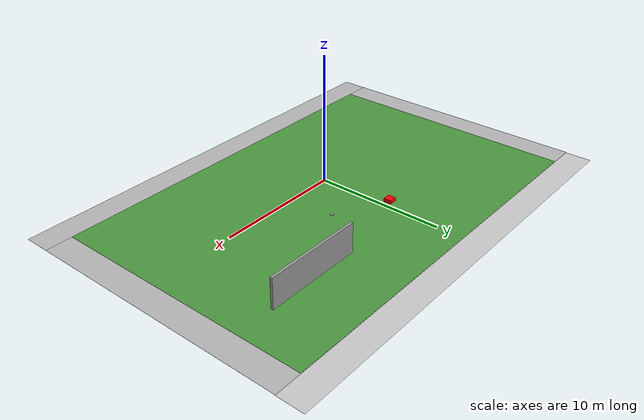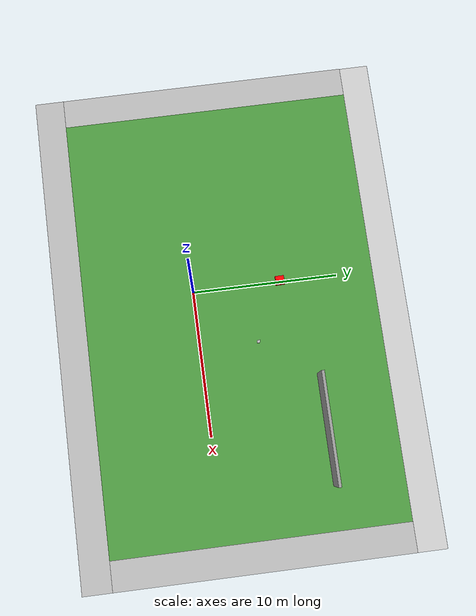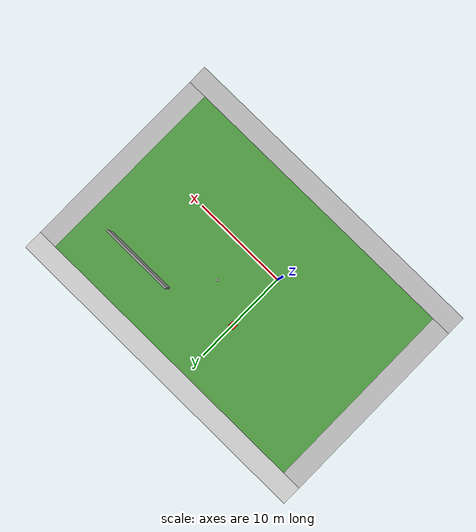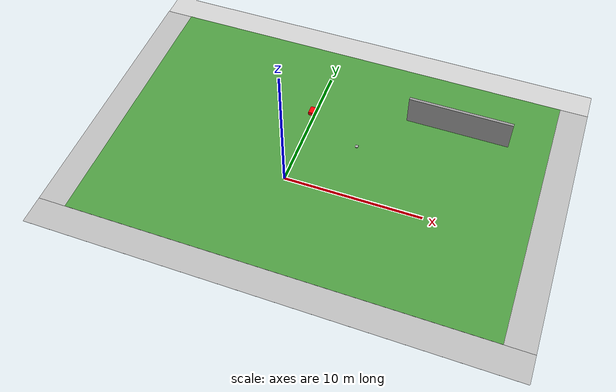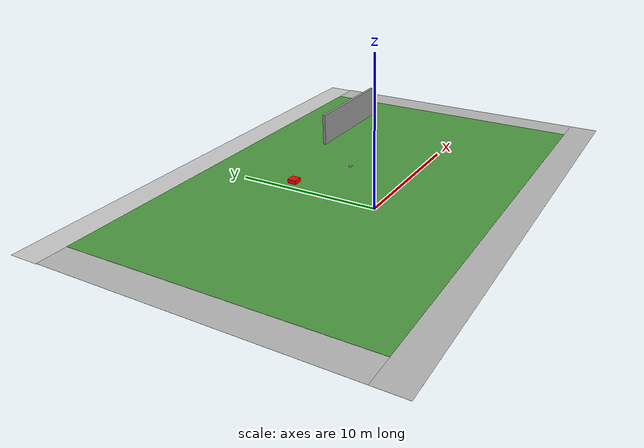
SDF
<sdf version="1.4">
 <world name="default">
  <light name="sun" type="directional">
   <pose>0 0 10 0 -0 0</pose>
   <diffuse>0.8 0.8 0.8 1</diffuse>
   <specular>0.2 0.2 0.2 1</specular>
   <attenuation>
    <range>1000</range>
    <constant>0.9</constant>
    <linear>0.01</linear>
    <quadratic>0.001</quadratic>
   </attenuation>
   <direction>-0.5 0.1 -0.9</direction>
  </light>
  <physics type="ode">
   <max_step_size>0.001</max_step_size>
   <real_time_factor>1</real_time_factor>
   <real_time_update_rate>1000</real_time_update_rate>
   <gravity>0 0 -9.8</gravity>
  </physics>
  <scene><ambient>0.4 0.4 0.4 1</ambient><background>0.7 0.7 0.7 1</background><shadows>1</shadows></scene>
  <model name="robocup_3Dsim_field_0">
   <pose>2.05927 2.44023 0.5 0 -0 0</pose>
   <static>1</static>
   <link name="RoboCup 3D Simulation Field::field">
    <pose>0 0 0.01 0 -0 0</pose>
    <collision name="collision">
     <geometry><plane><normal>0 0 1</normal><size>30 20</size></plane></geometry>
     <surface><friction><ode><mu>100</mu><mu2>50</mu2></ode></friction></surface>
    </collision>
    <visual name="base1">
     <pose>0 11 0.001 0 -0 0</pose>
     <cast_shadows>0</cast_shadows>
     <geometry><plane><normal>0 0 1</normal><size>34 2</size></plane></geometry>
     <material>
      <script>
       <uri>model://robocup_3Dsim_field/materials/scripts/</uri>
       <uri>model://robocup_3Dsim_field/materials/textures/</uri>
       <name>RoboCup/FieldBorder</name>
      </script>
     </material>
    </visual>
    <visual name="base2">
     <pose>0 -11 0.001 0 -0 0</pose>
     <cast_shadows>0</cast_shadows>
     <geometry><plane><normal>0 0 1</normal><size>34 2</size></plane></geometry>
     <material>
      <script>
       <uri>model://robocup_3Dsim_field/materials/scripts/</uri>
       <uri>model://robocup_3Dsim_field/materials/textures/</uri>
       <name>RoboCup/FieldBorder</name>
      </script>
     </material>
    </visual>
    <visual name="base3">
     <pose>16 0 0.001 0 -0 0</pose>
     <cast_shadows>0</cast_shadows>
     <geometry><plane><normal>0 0 1</normal><size>2 20</size></plane></geometry>
     <material>
      <script>
       <uri>model://robocup_3Dsim_field/materials/scripts/</uri>
       <uri>model://robocup_3Dsim_field/materials/textures/</uri>
       <name>RoboCup/FieldBorder</name>
      </script>
     </material>
    </visual>
    <visual name="base4">
     <pose>-16 0 0.001 0 -0 0</pose>
     <cast_shadows>0</cast_shadows>
     <geometry><plane><normal>0 0 1</normal><size>2 20</size></plane></geometry>
     <material>
      <script>
       <uri>model://robocup_3Dsim_field/materials/scripts/</uri>
       <uri>model://robocup_3Dsim_field/materials/textures/</uri>
       <name>RoboCup/FieldBorder</name>
      </script>
     </material>
    </visual>
    <visual name="carpet">
     <cast_shadows>0</cast_shadows>
     <geometry><plane><normal>0 0 1</normal><size>30 20</size></plane></geometry>
     <material>
      <script>
       <uri>model://robocup_3Dsim_field/materials/scripts/</uri>
       <uri>model://robocup_3Dsim_field/materials/textures/</uri>
       <name>RoboCup/Grass</name>
      </script>
     </material>
    </visual>
   </link>
  </model>
  <model name="grey_wall">
   <static>1</static>
   <link name="link">
    <pose>0 0 1.4 0 -0 0</pose>
    <collision name="collision"><geometry><box><size>7.5 0.2 2.8</size></box></geometry></collision>
    <visual name="visual">
     <cast_shadows>0</cast_shadows>
     <geometry><box><size>7.5 0.2 2.8</size></box></geometry>
     <material>
      <script>
       <uri>model://grey_wall/materials/scripts</uri>
       <uri>model://grey_wall/materials/textures</uri>
       <name>vrc/grey_wall</name>
      </script>
     </material>
    </visual>
    <velocity_decay><linear>0</linear><angular>0</angular></velocity_decay>
   </link>
   <pose>10.402 7.71769 0 0 -0 0</pose>
  </model>
  <model name="payload1">
   <pose>4 4 0.5 0 0 0</pose>
   <static>true</static>
   <link name="link">
    <inertial>
     <mass>1.0</mass>
     <inertia><ixx>0.083</ixx><ixy>0.0</ixy><ixz>0.0</ixz><iyy>0.083</iyy><iyz>0.0</iyz><izz>0.083</izz></inertia>
    </inertial>
    <collision name="collision"><geometry><box><size>0.2 0.2 0.2</size></box></geometry></collision>
    <visual name="visual"><geometry><box><size>0.2 0.2 0.2</size></box></geometry></visual>
   </link>
  </model>
  <model name="dropoff1">
   <pose>0 6 0.5 0 0 0</pose>
   <static>true</static>
   <link name="link">
    <inertial>
     <mass>1.0</mass>
     <inertia><ixx>0.083</ixx><ixy>0.0</ixy><ixz>0.0</ixz><iyy>0.083</iyy><iyz>0.0</iyz><izz>0.083</izz></inertia>
    </inertial>
    <collision name="collision"><geometry><box><size>0.6 0.6 0.6</size></box></geometry></collision>
    <visual name="visual">
     <geometry><box><size>0.6 0.6 0.6</size></box></geometry>
     <material>
      <ambient>1 0 0 1</ambient>
      <diffuse>1 0 0 1</diffuse>
      <specular>0.1 0.1 0.1 1</specular>
      <emissive>0 0 0 0</emissive>
     </material>
    </visual>
   </link>
  </model>
 </world>
</sdf>
